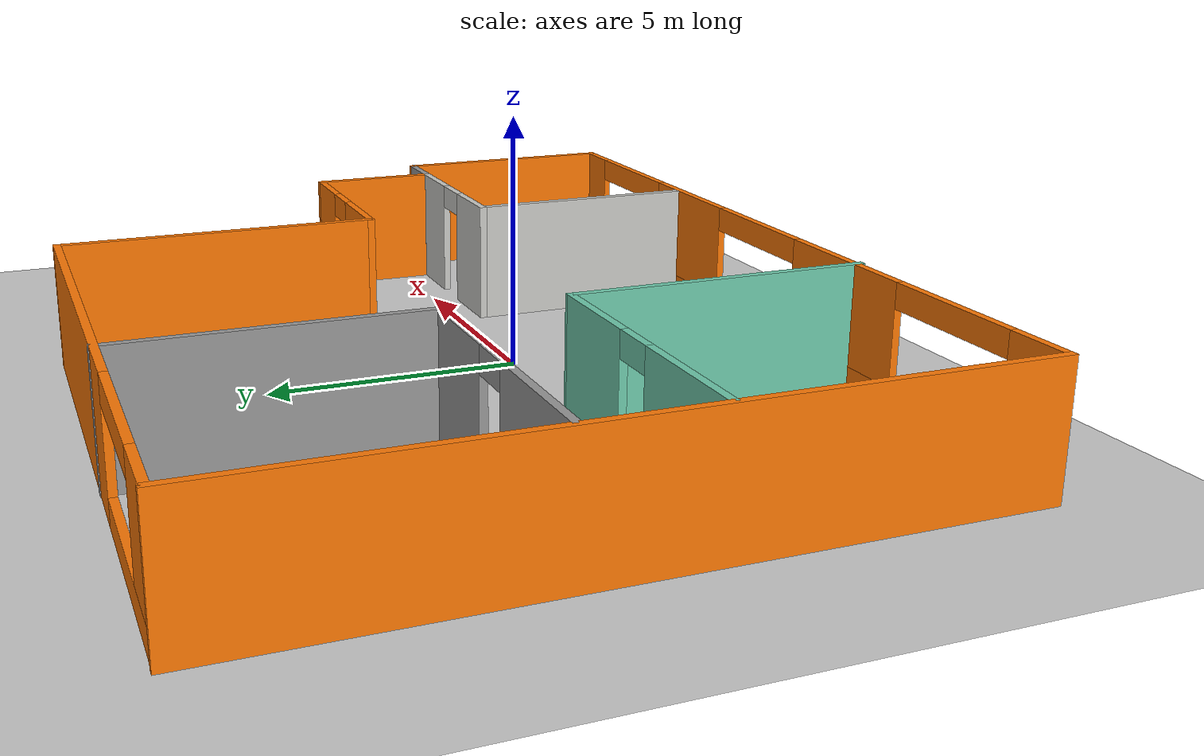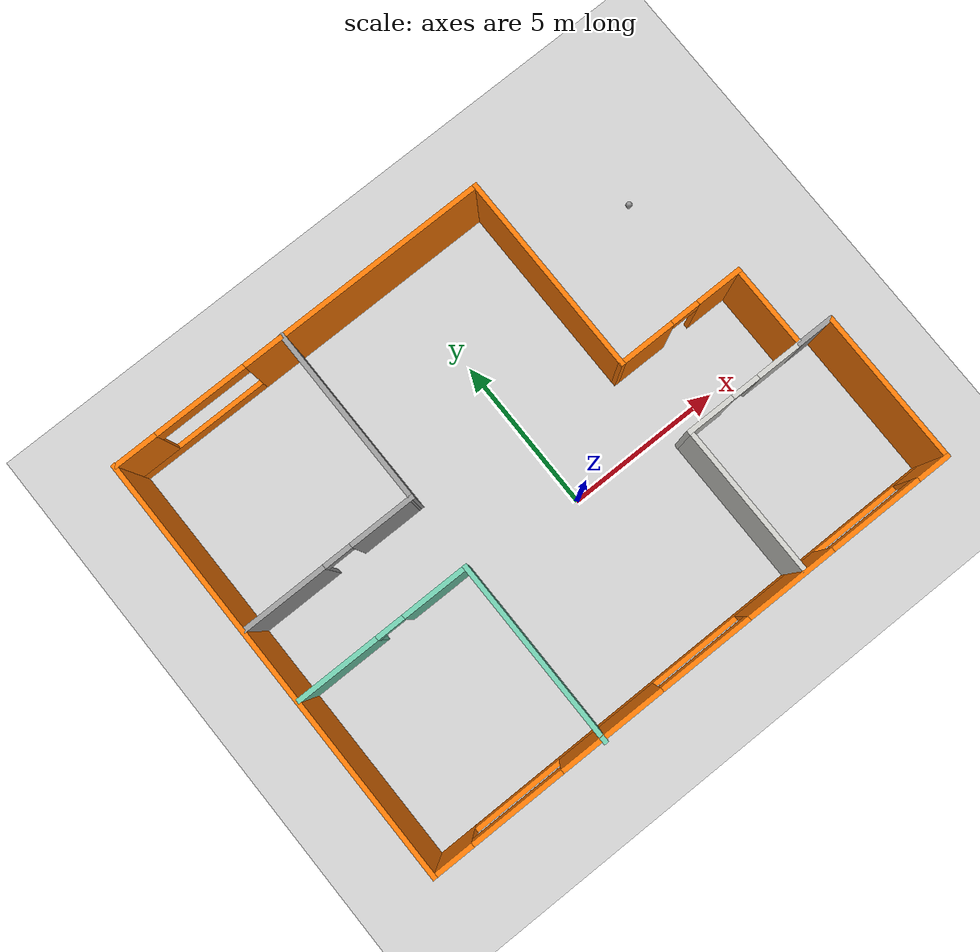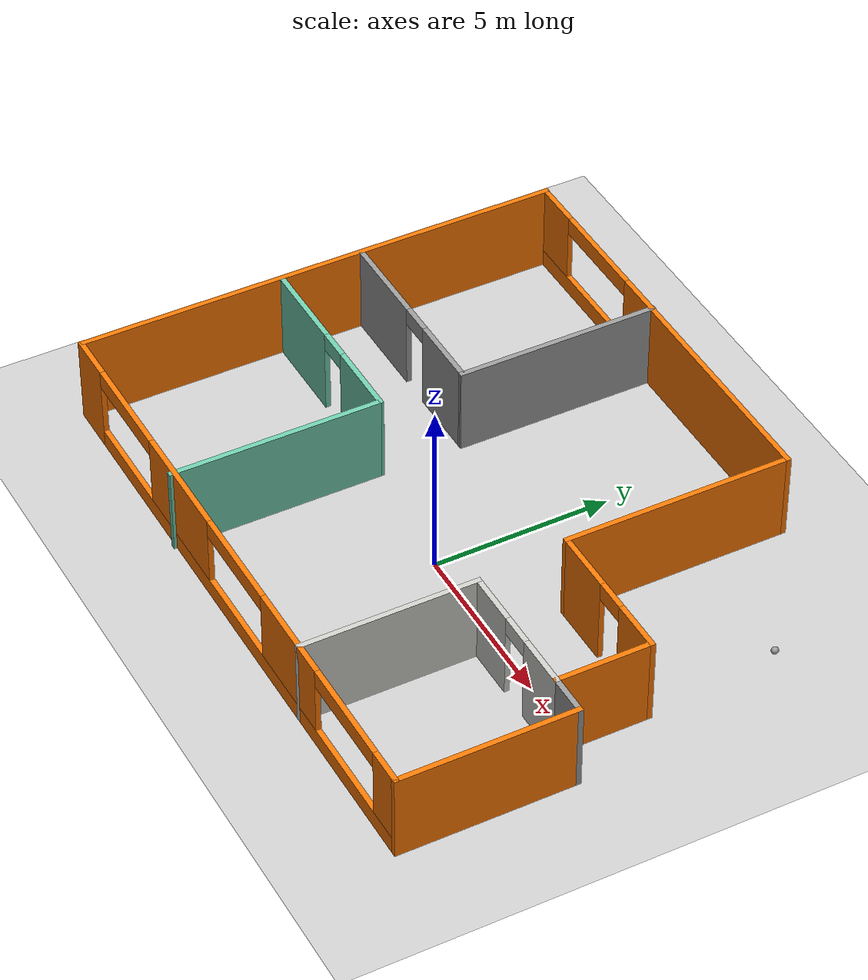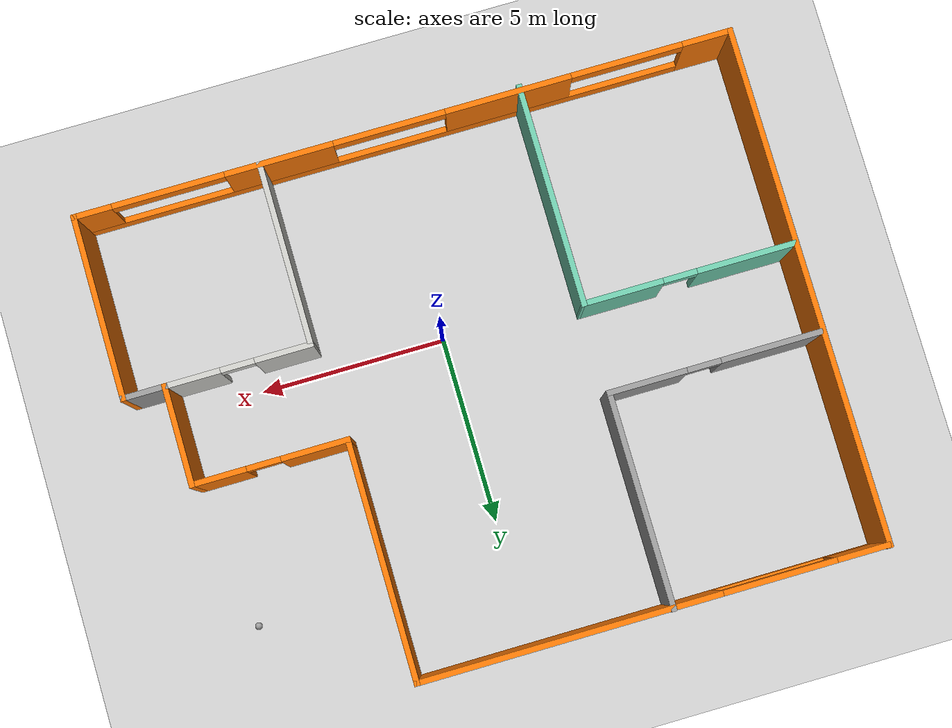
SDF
<sdf version="1.6">
 <world name="default">
  <model name="ground_plane">
   <static>1</static>
   <link name="link">
    <collision name="collision">
     <geometry><plane><normal>0 0 1</normal><size>100 100</size></plane></geometry>
     <surface>
      <contact><collide_bitmask>65535</collide_bitmask></contact>
      <friction><ode><mu>100</mu><mu2>50</mu2></ode></friction>
     </surface>
    </collision>
    <visual name="visual">
     <cast_shadows>0</cast_shadows>
     <geometry><plane><normal>0 0 1</normal><size>100 100</size></plane></geometry>
     <material>
      <script><uri>file://media/materials/scripts/gazebo.material</uri><name>Gazebo/Grey</name></script>
     </material>
    </visual>
   </link>
  </model>
  <model name="MyBuilding_0">
   <pose>-0.535 1.45 0 0 -0 0</pose>
   <link name="Wall_10">
    <collision name="Wall_10_Collision">
     <geometry><box><size>6.5 0.15 2.5</size></box></geometry>
     <pose>0 0 1.25 0 -0 0</pose>
    </collision>
    <visual name="Wall_10_Visual">
     <pose>0 0 1.25 0 -0 0</pose>
     <geometry><box><size>6.5 0.15 2.5</size></box></geometry>
     <material>
      <script><uri>file://media/materials/scripts/gazebo.material</uri><name>Gazebo/Grey</name></script>
      <ambient>0.996078 0.47451 0.0196078 1</ambient>
     </material>
     <meta><layer>0</layer></meta>
    </visual>
    <pose>3.6 3.76 0 0 -0 1.5708</pose>
   </link>
   <link name="Wall_11">
    <pose>-2.575 6.935 0 0 -0 3.14159</pose>
    <visual name="Wall_11_Visual_0">
     <pose>-2.20518 0 1.25 0 -0 0</pose>
     <geometry><box><size>8.08963 0.15 2.5</size></box></geometry>
     <material>
      <script><uri>file://media/materials/scripts/gazebo.material</uri><name>Gazebo/Grey</name></script>
      <ambient>0.996078 0.47451 0.0196078 1</ambient>
     </material>
     <meta><layer>0</layer></meta>
    </visual>
    <collision name="Wall_11_Collision_0">
     <geometry><box><size>8.08963 0.15 2.5</size></box></geometry>
     <pose>-2.20518 0 1.25 0 -0 0</pose>
    </collision>
    <visual name="Wall_11_Visual_1">
     <pose>4.04482 0 0.25 0 -0 0</pose>
     <geometry><box><size>4.41036 0.15 0.5</size></box></geometry>
     <material>
      <script><uri>file://media/materials/scripts/gazebo.material</uri><name>Gazebo/Grey</name></script>
      <ambient>0.996078 0.47451 0.0196078 1</ambient>
     </material>
     <meta><layer>0</layer></meta>
    </visual>
    <collision name="Wall_11_Collision_1">
     <geometry><box><size>4.41036 0.15 0.5</size></box></geometry>
     <pose>4.04482 0 0.25 0 -0 0</pose>
    </collision>
    <visual name="Wall_11_Visual_2">
     <pose>5.54482 0 1.5 0 -0 0</pose>
     <geometry><box><size>1.41037 0.15 2</size></box></geometry>
     <material>
      <script><uri>file://media/materials/scripts/gazebo.material</uri><name>Gazebo/Grey</name></script>
      <ambient>0.996078 0.47451 0.0196078 1</ambient>
     </material>
     <meta><layer>0</layer></meta>
    </visual>
    <collision name="Wall_11_Collision_2">
     <geometry><box><size>1.41037 0.15 2</size></box></geometry>
     <pose>5.54482 0 1.5 0 -0 0</pose>
    </collision>
    <visual name="Wall_11_Visual_3">
     <pose>3.33963 0 2.25 0 -0 0</pose>
     <geometry><box><size>3 0.15 0.5</size></box></geometry>
     <material>
      <script><uri>file://media/materials/scripts/gazebo.material</uri><name>Gazebo/Grey</name></script>
      <ambient>0.996078 0.47451 0.0196078 1</ambient>
     </material>
     <meta><layer>0</layer></meta>
    </visual>
    <collision name="Wall_11_Collision_3">
     <geometry><box><size>3 0.15 0.5</size></box></geometry>
     <pose>3.33963 0 2.25 0 -0 0</pose>
    </collision>
   </link>
   <link name="Wall_14">
    <pose>-5.934 -1.0785 0 0 0 -0.000536</pose>
    <visual name="Wall_14_Visual_0">
     <pose>-1.54624 0 1.25 0 -0 0</pose>
     <geometry><box><size>2.65753 0.15 2.5</size></box></geometry>
     <material>
      <script><uri>file://media/materials/scripts/gazebo.material</uri><name>Gazebo/Grey</name></script>
      <ambient>0.435294 0.796078 0.67451 1</ambient>
     </material>
     <meta><layer>0</layer></meta>
    </visual>
    <collision name="Wall_14_Collision_0">
     <geometry><box><size>2.65753 0.15 2.5</size></box></geometry>
     <pose>-1.54624 0 1.25 0 -0 0</pose>
    </collision>
    <visual name="Wall_14_Visual_1">
     <pose>1.77877 0 1.25 0 -0 0</pose>
     <geometry><box><size>2.19249 0.15 2.5</size></box></geometry>
     <material>
      <script><uri>file://media/materials/scripts/gazebo.material</uri><name>Gazebo/Grey</name></script>
      <ambient>0.435294 0.796078 0.67451 1</ambient>
     </material>
     <meta><layer>0</layer></meta>
    </visual>
    <collision name="Wall_14_Collision_1">
     <geometry><box><size>2.19249 0.15 2.5</size></box></geometry>
     <pose>1.77877 0 1.25 0 -0 0</pose>
    </collision>
    <visual name="Wall_14_Visual_2">
     <pose>0.232523 0 2.25 0 -0 0</pose>
     <geometry><box><size>0.9 0.15 0.5</size></box></geometry>
     <material>
      <script><uri>file://media/materials/scripts/gazebo.material</uri><name>Gazebo/Grey</name></script>
      <ambient>0.435294 0.796078 0.67451 1</ambient>
     </material>
     <meta><layer>0</layer></meta>
    </visual>
    <collision name="Wall_14_Collision_2">
     <geometry><box><size>0.9 0.15 0.5</size></box></geometry>
     <pose>0.232523 0 2.25 0 -0 0</pose>
    </collision>
   </link>
   <link name="Wall_15">
    <collision name="Wall_15_Collision">
     <geometry><box><size>6.02 0.15 2.5</size></box></geometry>
     <pose>0 0 1.25 0 -0 0</pose>
    </collision>
    <visual name="Wall_15_Visual">
     <pose>0 0 1.25 0 -0 0</pose>
     <geometry><box><size>6.02 0.15 2.5</size></box></geometry>
     <material>
      <script><uri>file://media/materials/scripts/gazebo.material</uri><name>Gazebo/Grey</name></script>
      <ambient>0.435294 0.796078 0.67451 1</ambient>
     </material>
     <meta><layer>0</layer></meta>
    </visual>
    <pose>-3.134 -4.015 0 0 0 -1.5708</pose>
   </link>
   <link name="Wall_17">
    <pose>5.775 -2.015 0 0 -0 3.14159</pose>
    <visual name="Wall_17_Visual_0">
     <pose>-1.23223 0 1.25 0 -0 0</pose>
     <geometry><box><size>1.53555 0.15 2.5</size></box></geometry>
     <material>
      <script><uri>file://media/materials/scripts/gazebo.material</uri><name>Gazebo/CeilingTiled</name></script>
      <ambient>1 1 1 1</ambient>
     </material>
     <meta><layer>0</layer></meta>
    </visual>
    <collision name="Wall_17_Collision_0">
     <geometry><box><size>1.53555 0.15 2.5</size></box></geometry>
     <pose>-1.23223 0 1.25 0 -0 0</pose>
    </collision>
    <visual name="Wall_17_Visual_1">
     <pose>1.21777 0 1.25 0 -0 0</pose>
     <geometry><box><size>1.56445 0.15 2.5</size></box></geometry>
     <material>
      <script><uri>file://media/materials/scripts/gazebo.material</uri><name>Gazebo/CeilingTiled</name></script>
      <ambient>1 1 1 1</ambient>
     </material>
     <meta><layer>0</layer></meta>
    </visual>
    <collision name="Wall_17_Collision_1">
     <geometry><box><size>1.56445 0.15 2.5</size></box></geometry>
     <pose>1.21777 0 1.25 0 -0 0</pose>
    </collision>
    <visual name="Wall_17_Visual_2">
     <pose>-0.014453 0 2.25 0 -0 0</pose>
     <geometry><box><size>0.9 0.15 0.5</size></box></geometry>
     <material>
      <script><uri>file://media/materials/scripts/gazebo.material</uri><name>Gazebo/CeilingTiled</name></script>
      <ambient>1 1 1 1</ambient>
     </material>
     <meta><layer>0</layer></meta>
    </visual>
    <collision name="Wall_17_Collision_2">
     <geometry><box><size>0.9 0.15 0.5</size></box></geometry>
     <pose>-0.014453 0 2.25 0 -0 0</pose>
    </collision>
   </link>
   <link name="Wall_18">
    <collision name="Wall_18_Collision">
     <geometry><box><size>5 0.15 2.5</size></box></geometry>
     <pose>0 0 1.25 0 -0 0</pose>
    </collision>
    <visual name="Wall_18_Visual">
     <pose>0 0 1.25 0 -0 0</pose>
     <geometry><box><size>5 0.15 2.5</size></box></geometry>
     <material>
      <script><uri>file://media/materials/scripts/gazebo.material</uri><name>Gazebo/CeilingTiled</name></script>
      <ambient>1 1 1 1</ambient>
     </material>
     <meta><layer>0</layer></meta>
    </visual>
    <pose>3.85 -4.44 0 0 0 -1.5708</pose>
   </link>
   <link name="Wall_2">
    <collision name="Wall_2_Collision">
     <geometry><box><size>13.965 0.15 2.5</size></box></geometry>
     <pose>0 0 1.25 0 -0 0</pose>
    </collision>
    <visual name="Wall_2_Visual">
     <pose>0 0 1.25 0 -0 0</pose>
     <geometry><box><size>13.965 0.15 2.5</size></box></geometry>
     <material>
      <script><uri>file://media/materials/scripts/gazebo.material</uri><name>Gazebo/Grey</name></script>
      <ambient>0.996078 0.47451 0.0196078 1</ambient>
     </material>
     <meta><layer>0</layer></meta>
    </visual>
    <pose>-8.8 0.0425 0 0 0 -1.5708</pose>
   </link>
   <link name="Wall_20">
    <pose>-5.90718 1.29035 0 0 0 -0.000126</pose>
    <visual name="Wall_20_Visual_0">
     <pose>-1.51978 0 1.25 0 -0 0</pose>
     <geometry><box><size>2.71044 0.15 2.5</size></box></geometry>
     <material>
      <script><uri>file://media/materials/scripts/gazebo.material</uri><name>Gazebo/Grey</name></script>
      <ambient>1 1 1 1</ambient>
     </material>
     <meta><layer>0</layer></meta>
    </visual>
    <collision name="Wall_20_Collision_0">
     <geometry><box><size>2.71044 0.15 2.5</size></box></geometry>
     <pose>-1.51978 0 1.25 0 -0 0</pose>
    </collision>
    <visual name="Wall_20_Visual_1">
     <pose>1.80522 0 1.25 0 -0 0</pose>
     <geometry><box><size>2.13956 0.15 2.5</size></box></geometry>
     <material>
      <script><uri>file://media/materials/scripts/gazebo.material</uri><name>Gazebo/Grey</name></script>
      <ambient>1 1 1 1</ambient>
     </material>
     <meta><layer>0</layer></meta>
    </visual>
    <collision name="Wall_20_Collision_1">
     <geometry><box><size>2.13956 0.15 2.5</size></box></geometry>
     <pose>1.80522 0 1.25 0 -0 0</pose>
    </collision>
    <visual name="Wall_20_Visual_2">
     <pose>0.285438 0 2.25 0 -0 0</pose>
     <geometry><box><size>0.9 0.15 0.5</size></box></geometry>
     <material>
      <script><uri>file://media/materials/scripts/gazebo.material</uri><name>Gazebo/Grey</name></script>
      <ambient>1 1 1 1</ambient>
     </material>
     <meta><layer>0</layer></meta>
    </visual>
    <collision name="Wall_20_Collision_2">
     <geometry><box><size>0.9 0.15 0.5</size></box></geometry>
     <pose>0.285438 0 2.25 0 -0 0</pose>
    </collision>
   </link>
   <link name="Wall_21">
    <collision name="Wall_21_Collision">
     <geometry><box><size>5.81 0.15 2.5</size></box></geometry>
     <pose>0 0 1.25 0 -0 0</pose>
    </collision>
    <visual name="Wall_21_Visual">
     <pose>0 0 1.25 0 -0 0</pose>
     <geometry><box><size>5.81 0.15 2.5</size></box></geometry>
     <material>
      <script><uri>file://media/materials/scripts/gazebo.material</uri><name>Gazebo/Grey</name></script>
      <ambient>1 1 1 1</ambient>
     </material>
     <meta><layer>0</layer></meta>
    </visual>
    <pose>-3.107 4.12 0 0 -0 1.5708</pose>
   </link>
   <link name="Wall_3">
    <pose>0 -6.865 0 0 -0 0</pose>
    <visual name="Wall_3_Visual_0">
     <pose>-8.18845 0 1.25 0 -0 0</pose>
     <geometry><box><size>1.37311 0.15 2.5</size></box></geometry>
     <material>
      <script><uri>file://media/materials/scripts/gazebo.material</uri><name>Gazebo/Grey</name></script>
      <ambient>0.996078 0.47451 0.0196078 1</ambient>
     </material>
     <meta><layer>0</layer></meta>
    </visual>
    <collision name="Wall_3_Collision_0">
     <geometry><box><size>1.37311 0.15 2.5</size></box></geometry>
     <pose>-8.18845 0 1.25 0 -0 0</pose>
    </collision>
    <visual name="Wall_3_Visual_1">
     <pose>0.686554 0 0.25 0 -0 0</pose>
     <geometry><box><size>16.3769 0.15 0.5</size></box></geometry>
     <material>
      <script><uri>file://media/materials/scripts/gazebo.material</uri><name>Gazebo/Grey</name></script>
      <ambient>0.996078 0.47451 0.0196078 1</ambient>
     </material>
     <meta><layer>0</layer></meta>
    </visual>
    <collision name="Wall_3_Collision_1">
     <geometry><box><size>16.3769 0.15 0.5</size></box></geometry>
     <pose>0.686554 0 0.25 0 -0 0</pose>
    </collision>
    <visual name="Wall_3_Visual_2">
     <pose>-2.80607 0 1.5 0 -0 0</pose>
     <geometry><box><size>3.39165 0.15 2</size></box></geometry>
     <material>
      <script><uri>file://media/materials/scripts/gazebo.material</uri><name>Gazebo/Grey</name></script>
      <ambient>0.996078 0.47451 0.0196078 1</ambient>
     </material>
     <meta><layer>0</layer></meta>
    </visual>
    <collision name="Wall_3_Collision_2">
     <geometry><box><size>3.39165 0.15 2</size></box></geometry>
     <pose>-2.80607 0 1.5 0 -0 0</pose>
    </collision>
    <visual name="Wall_3_Visual_3">
     <pose>3.34233 0 1.5 0 -0 0</pose>
     <geometry><box><size>2.90515 0.15 2</size></box></geometry>
     <material>
      <script><uri>file://media/materials/scripts/gazebo.material</uri><name>Gazebo/Grey</name></script>
      <ambient>0.996078 0.47451 0.0196078 1</ambient>
     </material>
     <meta><layer>0</layer></meta>
    </visual>
    <collision name="Wall_3_Collision_3">
     <geometry><box><size>2.90515 0.15 2</size></box></geometry>
     <pose>3.34233 0 1.5 0 -0 0</pose>
    </collision>
    <visual name="Wall_3_Visual_4">
     <pose>8.33495 0 1.5 0 -0 0</pose>
     <geometry><box><size>1.0801 0.15 2</size></box></geometry>
     <material>
      <script><uri>file://media/materials/scripts/gazebo.material</uri><name>Gazebo/Grey</name></script>
      <ambient>0.996078 0.47451 0.0196078 1</ambient>
     </material>
     <meta><layer>0</layer></meta>
    </visual>
    <collision name="Wall_3_Collision_4">
     <geometry><box><size>1.0801 0.15 2</size></box></geometry>
     <pose>8.33495 0 1.5 0 -0 0</pose>
    </collision>
    <visual name="Wall_3_Visual_5">
     <pose>-6.00189 0 2.25 0 -0 0</pose>
     <geometry><box><size>3 0.15 0.5</size></box></geometry>
     <material>
      <script><uri>file://media/materials/scripts/gazebo.material</uri><name>Gazebo/Grey</name></script>
      <ambient>0.996078 0.47451 0.0196078 1</ambient>
     </material>
     <meta><layer>0</layer></meta>
    </visual>
    <collision name="Wall_3_Collision_5">
     <geometry><box><size>3 0.15 0.5</size></box></geometry>
     <pose>-6.00189 0 2.25 0 -0 0</pose>
    </collision>
    <visual name="Wall_3_Visual_6">
     <pose>0.389756 0 2.25 0 -0 0</pose>
     <geometry><box><size>3 0.15 0.5</size></box></geometry>
     <material>
      <script><uri>file://media/materials/scripts/gazebo.material</uri><name>Gazebo/Grey</name></script>
      <ambient>0.996078 0.47451 0.0196078 1</ambient>
     </material>
     <meta><layer>0</layer></meta>
    </visual>
    <collision name="Wall_3_Collision_6">
     <geometry><box><size>3 0.15 0.5</size></box></geometry>
     <pose>0.389756 0 2.25 0 -0 0</pose>
    </collision>
    <visual name="Wall_3_Visual_7">
     <pose>6.2949 0 2.25 0 -0 0</pose>
     <geometry><box><size>3 0.15 0.5</size></box></geometry>
     <material>
      <script><uri>file://media/materials/scripts/gazebo.material</uri><name>Gazebo/Grey</name></script>
      <ambient>0.996078 0.47451 0.0196078 1</ambient>
     </material>
     <meta><layer>0</layer></meta>
    </visual>
    <collision name="Wall_3_Collision_7">
     <geometry><box><size>3 0.15 0.5</size></box></geometry>
     <pose>6.2949 0 2.25 0 -0 0</pose>
    </collision>
   </link>
   <link name="Wall_4">
    <collision name="Wall_4_Collision">
     <geometry><box><size>5 0.15 2.5</size></box></geometry>
     <pose>0 0 1.25 0 -0 0</pose>
    </collision>
    <visual name="Wall_4_Visual">
     <pose>0 0 1.25 0 -0 0</pose>
     <geometry><box><size>5 0.15 2.5</size></box></geometry>
     <material>
      <script><uri>file://media/materials/scripts/gazebo.material</uri><name>Gazebo/Grey</name></script>
      <ambient>0.996078 0.47451 0.0196078 1</ambient>
     </material>
     <meta><layer>0</layer></meta>
    </visual>
    <pose>8.8 -4.44 0 0 -0 1.5708</pose>
   </link>
   <link name="Wall_7">
    <collision name="Wall_7_Collision">
     <geometry><box><size>1.25 0.15 2.5</size></box></geometry>
     <pose>0 0 1.25 0 -0 0</pose>
    </collision>
    <visual name="Wall_7_Visual">
     <pose>0 0 1.25 0 -0 0</pose>
     <geometry><box><size>1.25 0.15 2.5</size></box></geometry>
     <material>
      <script><uri>file://media/materials/scripts/gazebo.material</uri><name>Gazebo/Grey</name></script>
      <ambient>1 1 1 1</ambient>
     </material>
     <meta><layer>0</layer></meta>
    </visual>
    <pose>8.25 -2.015 0 0 -0 3.14159</pose>
   </link>
   <link name="Wall_8">
    <collision name="Wall_8_Collision">
     <geometry><box><size>2.75 0.15 2.5</size></box></geometry>
     <pose>0 0 1.25 0 -0 0</pose>
    </collision>
    <visual name="Wall_8_Visual">
     <pose>0 0 1.25 0 -0 0</pose>
     <geometry><box><size>2.75 0.15 2.5</size></box></geometry>
     <material>
      <script><uri>file://media/materials/scripts/gazebo.material</uri><name>Gazebo/Grey</name></script>
      <ambient>0.996078 0.47451 0.0196078 1</ambient>
     </material>
     <meta><layer>0</layer></meta>
    </visual>
    <pose>7.7 -0.715 0 0 -0 1.5708</pose>
   </link>
   <link name="Wall_9">
    <pose>5.65 0.585 0 0 -0 3.14159</pose>
    <visual name="Wall_9_Visual_0">
     <pose>-1.37053 0 1.25 0 -0 0</pose>
     <geometry><box><size>1.50895 0.15 2.5</size></box></geometry>
     <material>
      <script><uri>file://media/materials/scripts/gazebo.material</uri><name>Gazebo/Grey</name></script>
      <ambient>0.996078 0.47451 0.0196078 1</ambient>
     </material>
     <meta><layer>0</layer></meta>
    </visual>
    <collision name="Wall_9_Collision_0">
     <geometry><box><size>1.50895 0.15 2.5</size></box></geometry>
     <pose>-1.37053 0 1.25 0 -0 0</pose>
    </collision>
    <visual name="Wall_9_Visual_1">
     <pose>1.20447 0 1.25 0 -0 0</pose>
     <geometry><box><size>1.84105 0.15 2.5</size></box></geometry>
     <material>
      <script><uri>file://media/materials/scripts/gazebo.material</uri><name>Gazebo/Grey</name></script>
      <ambient>0.996078 0.47451 0.0196078 1</ambient>
     </material>
     <meta><layer>0</layer></meta>
    </visual>
    <collision name="Wall_9_Collision_1">
     <geometry><box><size>1.84105 0.15 2.5</size></box></geometry>
     <pose>1.20447 0 1.25 0 -0 0</pose>
    </collision>
    <visual name="Wall_9_Visual_2">
     <pose>-0.166053 0 2.25 0 -0 0</pose>
     <geometry><box><size>0.9 0.15 0.5</size></box></geometry>
     <material>
      <script><uri>file://media/materials/scripts/gazebo.material</uri><name>Gazebo/Grey</name></script>
      <ambient>0.996078 0.47451 0.0196078 1</ambient>
     </material>
     <meta><layer>0</layer></meta>
    </visual>
    <collision name="Wall_9_Collision_2">
     <geometry><box><size>0.9 0.15 0.5</size></box></geometry>
     <pose>-0.166053 0 2.25 0 -0 0</pose>
    </collision>
   </link>
   <static>1</static>
  </model>
  <model name="white_ball_0">
   <link name="link_0">
    <inertial>
     <mass>1</mass>
     <inertia><ixx>0.1</ixx><ixy>0</ixy><ixz>0</ixz><iyy>0.1</iyy><iyz>0</iyz><izz>0.1</izz></inertia>
    </inertial>
    <visual name="visual">
     <geometry><sphere><radius>0.1</radius></sphere></geometry>
     <material>
      <lighting>1</lighting>
      <script><uri>file://media/materials/scripts/gazebo.material</uri><name>Gazebo/Grey</name></script>
      <shader type="pixel"><normal_map>__default__</normal_map></shader>
      <ambient>1 1 1 1</ambient>
      <diffuse>1 1 1 1</diffuse>
      <specular>1 1 1 1</specular>
      <emissive>1 1 1 1</emissive>
     </material>
    </visual>
    <collision name="collision">
     <geometry><sphere><radius>0.1</radius></sphere></geometry>
     <surface>
      <friction>
       <ode><mu>1</mu><mu2>1</mu2><fdir1>0 0 0</fdir1><slip1>0</slip1><slip2>0</slip2></ode>
       <torsional>
        <coefficient>1</coefficient>
        <patch_radius>0</patch_radius>
        <surface_radius>0</surface_radius>
        <use_patch_radius>1</use_patch_radius>
        <ode><slip>0</slip></ode>
       </torsional>
      </friction>
      <bounce><restitution_coefficient>0</restitution_coefficient><threshold>1e+06</threshold></bounce>
      <contact>
       <collide_without_contact>0</collide_without_contact>
       <collide_without_contact_bitmask>1</collide_without_contact_bitmask>
       <collide_bitmask>1</collide_bitmask>
       <ode>
        <soft_cfm>0</soft_cfm>
        <soft_erp>0.2</soft_erp>
        <kp>1e+13</kp>
        <kd>1</kd>
        <max_vel>0.01</max_vel>
        <min_depth>0</min_depth>
       </ode>
       <bullet>
        <split_impulse>1</split_impulse>
        <split_impulse_penetration_threshold>-0.01</split_impulse_penetration_threshold>
        <soft_cfm>0</soft_cfm>
        <soft_erp>0.2</soft_erp>
        <kp>1e+13</kp>
        <kd>1</kd>
       </bullet>
      </contact>
     </surface>
    </collision>
   </link>
   <static>0</static>
   <pose>6.74174 5.90625 0.1 0 -0 0</pose>
  </model>
 </world>
</sdf>
